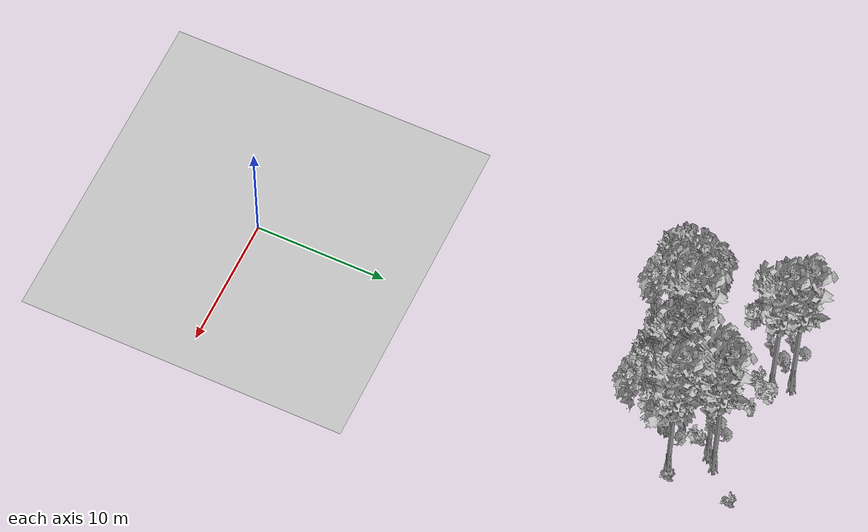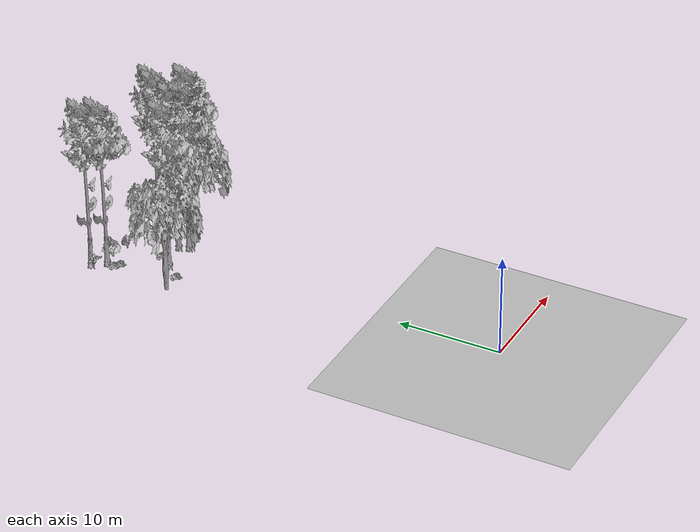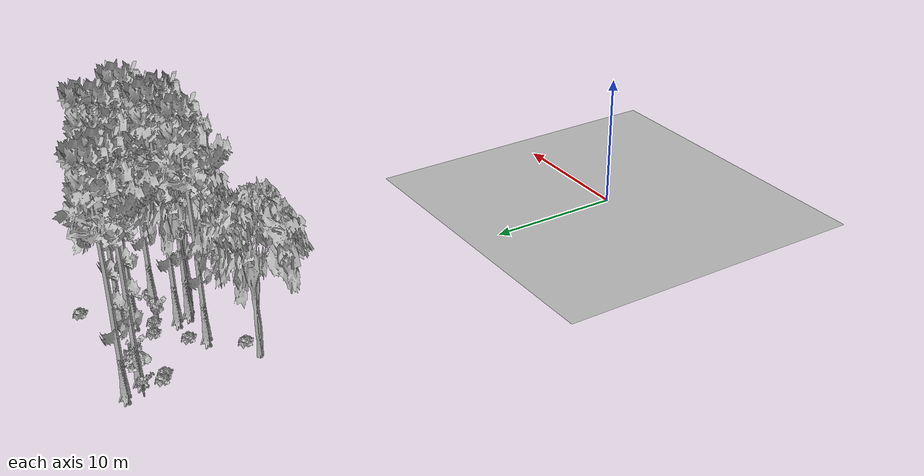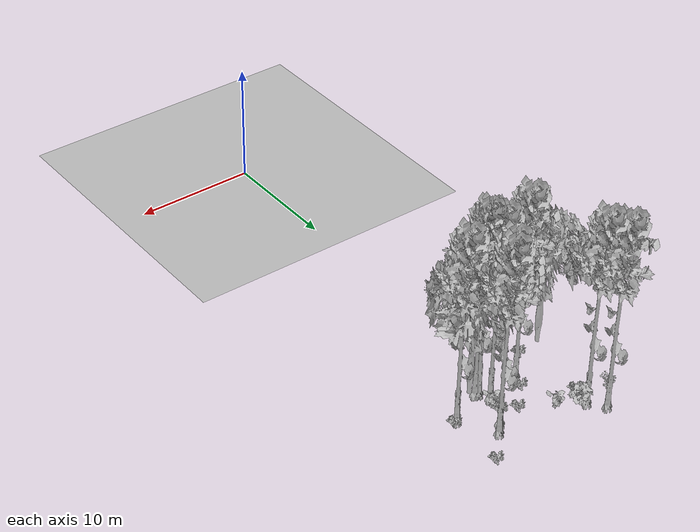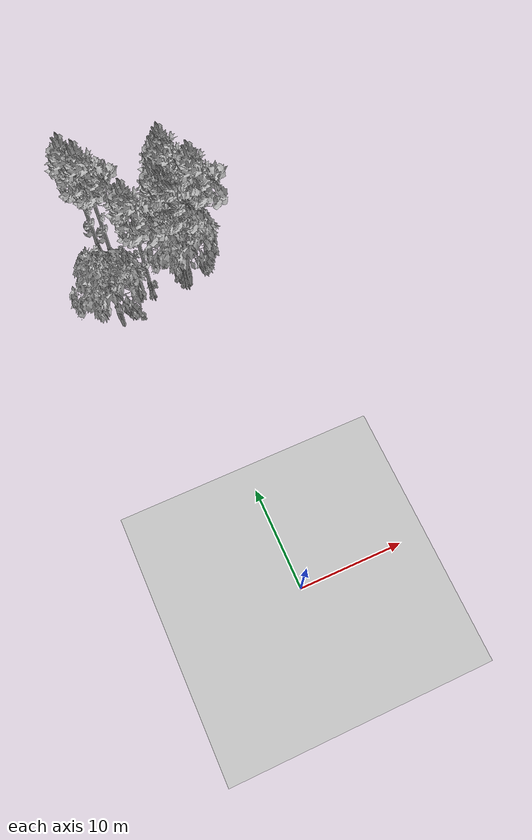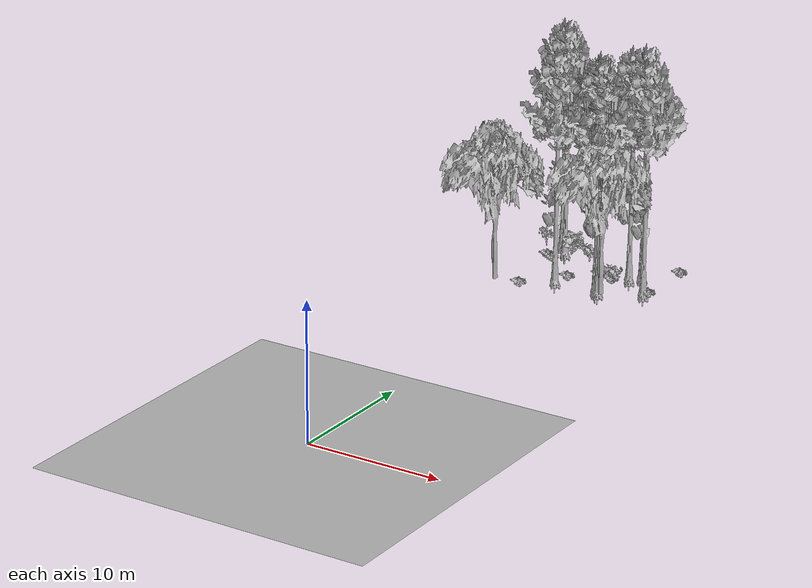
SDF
<sdf version="1.7">
 <world name="default">
  <model name="ground_plane">
   <static>1</static>
   <link name="link">
    <collision name="collision">
     <pose>-50 0 0 0 -0 0</pose>
     <geometry><plane><normal>0 0 1</normal><size>80 80</size></plane></geometry>
     <surface><contact><ode><min_depth>0.01</min_depth><max_vel>0</max_vel></ode></contact></surface>
    </collision>
    <visual name="grass">
     <cast_shadows>0</cast_shadows>
     <geometry>
      <mesh>
       <scale>0.46714285714285714 0.46714285714285714 0.1</scale>
       <uri>file://grass_plane/meshes/grass_plane.dae</uri>
      </mesh>
     </geometry>
    </visual>
   </link>
  </model>
  <model name="Tree 67">
   <static>1</static>
   <pose>1.953601201825471 34.15780483885254 0 1.57079 -0 0</pose>
   <link name="link">
    <collision name="collision">
     <geometry><mesh><scale>3.5 5 3.5</scale><uri>model://tree_9/meshes/tree_9.obj</uri></mesh></geometry>
    </collision>
    <visual name="visual">
     <geometry><mesh><scale>3.5 5 3.5</scale><uri>model://tree_9/meshes/tree_9.obj</uri></mesh></geometry>
    </visual>
   </link>
  </model>
  <model name="Tree 171">
   <static>1</static>
   <pose>3.167470859483295 36.67236679649187 0 1.57079 -0 0</pose>
   <link name="link">
    <collision name="collision">
     <geometry><mesh><scale>3.5 5 3.5</scale><uri>model://tree_9/meshes/tree_9.obj</uri></mesh></geometry>
    </collision>
    <visual name="visual">
     <geometry><mesh><scale>3.5 5 3.5</scale><uri>model://tree_9/meshes/tree_9.obj</uri></mesh></geometry>
    </visual>
   </link>
  </model>
  <model name="Tree 193">
   <static>1</static>
   <pose>2.5421337804139057 33.13782268100232 0 1.57079 -0 0</pose>
   <link name="link">
    <collision name="collision">
     <geometry><mesh><scale>3.5 5 3.5</scale><uri>model://tree_9/meshes/tree_9.obj</uri></mesh></geometry>
    </collision>
    <visual name="visual">
     <geometry><mesh><scale>3.5 5 3.5</scale><uri>model://tree_9/meshes/tree_9.obj</uri></mesh></geometry>
    </visual>
   </link>
  </model>
  <model name="Tree 271">
   <static>1</static>
   <pose>3.843879411268638 37.38095172360083 0 1.57079 -0 0</pose>
   <link name="link">
    <collision name="collision">
     <geometry><mesh><scale>3.5 5 3.5</scale><uri>model://tree_9/meshes/tree_9.obj</uri></mesh></geometry>
    </collision>
    <visual name="visual">
     <geometry><mesh><scale>3.5 5 3.5</scale><uri>model://tree_9/meshes/tree_9.obj</uri></mesh></geometry>
    </visual>
   </link>
  </model>
  <model name="Tree 311">
   <static>1</static>
   <pose>-4.325906306196686 39.85862625287295 0 1.57079 -0 0</pose>
   <link name="link">
    <collision name="collision">
     <geometry><mesh><scale>3.5 5 3.5</scale><uri>model://tree_9/meshes/tree_9.obj</uri></mesh></geometry>
    </collision>
    <visual name="visual">
     <geometry><mesh><scale>3.5 5 3.5</scale><uri>model://tree_9/meshes/tree_9.obj</uri></mesh></geometry>
    </visual>
   </link>
  </model>
  <model name="Tree 362">
   <static>1</static>
   <pose>2.8208354791064636 32.89792725625611 0 1.57079 -0 0</pose>
   <link name="link">
    <collision name="collision">
     <geometry><mesh><scale>3.5 5 3.5</scale><uri>model://tree_2/meshes/tree_2.obj</uri></mesh></geometry>
    </collision>
    <visual name="visual">
     <geometry><mesh><scale>3.5 5 3.5</scale><uri>model://tree_2/meshes/tree_2.obj</uri></mesh></geometry>
    </visual>
   </link>
  </model>
  <model name="Tree 409">
   <static>1</static>
   <pose>-5.136334178574316 31.321088175438263 0 1.57079 -0 0</pose>
   <link name="link">
    <collision name="collision">
     <geometry><mesh><scale>3.5 5 3.5</scale><uri>model://tree_2/meshes/tree_2.obj</uri></mesh></geometry>
    </collision>
    <visual name="visual">
     <geometry><mesh><scale>3.5 5 3.5</scale><uri>model://tree_2/meshes/tree_2.obj</uri></mesh></geometry>
    </visual>
   </link>
  </model>
  <model name="Tree 424">
   <static>1</static>
   <pose>5.466930071926676 34.60804702306956 0 1.57079 -0 0</pose>
   <link name="link">
    <collision name="collision">
     <geometry><mesh><scale>3.5 5 3.5</scale><uri>model://tree_9/meshes/tree_9.obj</uri></mesh></geometry>
    </collision>
    <visual name="visual">
     <geometry><mesh><scale>3.5 5 3.5</scale><uri>model://tree_9/meshes/tree_9.obj</uri></mesh></geometry>
    </visual>
   </link>
  </model>
  <model name="Tree 461">
   <static>1</static>
   <pose>-1.1492517602160675 33.359229274838526 0 1.57079 -0 0</pose>
   <link name="link">
    <collision name="collision">
     <geometry><mesh><scale>3.5 5 3.5</scale><uri>model://tree_9/meshes/tree_9.obj</uri></mesh></geometry>
    </collision>
    <visual name="visual">
     <geometry><mesh><scale>3.5 5 3.5</scale><uri>model://tree_9/meshes/tree_9.obj</uri></mesh></geometry>
    </visual>
   </link>
  </model>
  <model name="Tree 469">
   <static>1</static>
   <pose>-3.4103152258569125 38.671943383223606 0 1.57079 -0 0</pose>
   <link name="link">
    <collision name="collision">
     <geometry><mesh><scale>3.5 5 3.5</scale><uri>model://tree_9/meshes/tree_9.obj</uri></mesh></geometry>
    </collision>
    <visual name="visual">
     <geometry><mesh><scale>3.5 5 3.5</scale><uri>model://tree_9/meshes/tree_9.obj</uri></mesh></geometry>
    </visual>
   </link>
  </model>
  <model name="Tree 500">
   <static>1</static>
   <pose>2.2994445297178743 33.25248018291592 0 1.57079 -0 0</pose>
   <link name="link">
    <collision name="collision">
     <geometry><mesh><scale>3.5 5 3.5</scale><uri>model://tree_9/meshes/tree_9.obj</uri></mesh></geometry>
    </collision>
    <visual name="visual">
     <geometry><mesh><scale>3.5 5 3.5</scale><uri>model://tree_9/meshes/tree_9.obj</uri></mesh></geometry>
    </visual>
   </link>
  </model>
  <model name="Bush 87">
   <static>1</static>
   <pose>-5.171880319087798 39.004066634397844 0 1.57079 -0 0</pose>
   <link name="link">
    <collision name="collision">
     <geometry><mesh><scale>2 2 2</scale><uri>model://bush_5/meshes/bush_5.obj</uri></mesh></geometry>
     <surface><contact><collide_without_contact>false</collide_without_contact></contact></surface>
    </collision>
    <visual name="visual">
     <geometry><mesh><scale>2 2 2</scale><uri>model://bush_5/meshes/bush_5.obj</uri></mesh></geometry>
    </visual>
   </link>
  </model>
  <model name="Bush 132">
   <static>1</static>
   <pose>5.832929078219642 39.41352126537295 0 1.57079 -0 0</pose>
   <link name="link">
    <collision name="collision">
     <geometry><mesh><scale>2 2 2</scale><uri>model://bush_2/meshes/bush_2.obj</uri></mesh></geometry>
     <surface><contact><collide_without_contact>false</collide_without_contact></contact></surface>
    </collision>
    <visual name="visual">
     <geometry><mesh><scale>2 2 2</scale><uri>model://bush_2/meshes/bush_2.obj</uri></mesh></geometry>
    </visual>
   </link>
  </model>
  <model name="Bush 154">
   <static>1</static>
   <pose>2.7310749565641146 35.2284893293957 0 1.57079 -0 0</pose>
   <link name="link">
    <collision name="collision">
     <geometry><mesh><scale>2 2 2</scale><uri>model://bush_0/meshes/bush_0.obj</uri></mesh></geometry>
     <surface><contact><collide_without_contact>false</collide_without_contact></contact></surface>
    </collision>
    <visual name="visual">
     <geometry><mesh><scale>2 2 2</scale><uri>model://bush_0/meshes/bush_0.obj</uri></mesh></geometry>
    </visual>
   </link>
  </model>
  <model name="Bush 166">
   <static>1</static>
   <pose>-4.236401893964569 37.41534687440519 0 1.57079 -0 0</pose>
   <link name="link">
    <collision name="collision">
     <geometry><mesh><scale>2 2 2</scale><uri>model://bush_2/meshes/bush_2.obj</uri></mesh></geometry>
     <surface><contact><collide_without_contact>false</collide_without_contact></contact></surface>
    </collision>
    <visual name="visual">
     <geometry><mesh><scale>2 2 2</scale><uri>model://bush_2/meshes/bush_2.obj</uri></mesh></geometry>
    </visual>
   </link>
  </model>
  <model name="Bush 183">
   <static>1</static>
   <pose>-3.708017997300537 37.0875923695679 0 1.57079 -0 0</pose>
   <link name="link">
    <collision name="collision">
     <geometry><mesh><scale>2 2 2</scale><uri>model://bush_2/meshes/bush_2.obj</uri></mesh></geometry>
     <surface><contact><collide_without_contact>false</collide_without_contact></contact></surface>
    </collision>
    <visual name="visual">
     <geometry><mesh><scale>2 2 2</scale><uri>model://bush_2/meshes/bush_2.obj</uri></mesh></geometry>
    </visual>
   </link>
  </model>
  <model name="Bush 231">
   <static>1</static>
   <pose>2.207581766646719 35.64053043733193 0 1.57079 -0 0</pose>
   <link name="link">
    <collision name="collision">
     <geometry><mesh><scale>2 2 2</scale><uri>model://bush_2/meshes/bush_2.obj</uri></mesh></geometry>
     <surface><contact><collide_without_contact>false</collide_without_contact></contact></surface>
    </collision>
    <visual name="visual">
     <geometry><mesh><scale>2 2 2</scale><uri>model://bush_2/meshes/bush_2.obj</uri></mesh></geometry>
    </visual>
   </link>
  </model>
  <model name="Bush 242">
   <static>1</static>
   <pose>0.9832890113342856 36.11921697712971 0 1.57079 -0 0</pose>
   <link name="link">
    <collision name="collision">
     <geometry><mesh><scale>2 2 2</scale><uri>model://bush_2/meshes/bush_2.obj</uri></mesh></geometry>
     <surface><contact><collide_without_contact>false</collide_without_contact></contact></surface>
    </collision>
    <visual name="visual">
     <geometry><mesh><scale>2 2 2</scale><uri>model://bush_2/meshes/bush_2.obj</uri></mesh></geometry>
    </visual>
   </link>
  </model>
  <model name="Bush 266">
   <static>1</static>
   <pose>5.755213885462354 34.72875279564994 0 1.57079 -0 0</pose>
   <link name="link">
    <collision name="collision">
     <geometry><mesh><scale>2 2 2</scale><uri>model://bush_2/meshes/bush_2.obj</uri></mesh></geometry>
     <surface><contact><collide_without_contact>false</collide_without_contact></contact></surface>
    </collision>
    <visual name="visual">
     <geometry><mesh><scale>2 2 2</scale><uri>model://bush_2/meshes/bush_2.obj</uri></mesh></geometry>
    </visual>
   </link>
  </model>
  <model name="Bush 415">
   <static>1</static>
   <pose>-0.7536215253760901 34.387108137557775 0 1.57079 -0 0</pose>
   <link name="link">
    <collision name="collision">
     <geometry><mesh><scale>2 2 2</scale><uri>model://bush_2/meshes/bush_2.obj</uri></mesh></geometry>
     <surface><contact><collide_without_contact>false</collide_without_contact></contact></surface>
    </collision>
    <visual name="visual">
     <geometry><mesh><scale>2 2 2</scale><uri>model://bush_2/meshes/bush_2.obj</uri></mesh></geometry>
    </visual>
   </link>
  </model>
  <model name="Bush 437">
   <static>1</static>
   <pose>-0.9064819757166376 37.99062700549415 0 1.57079 -0 0</pose>
   <link name="link">
    <collision name="collision">
     <geometry><mesh><scale>2 2 2</scale><uri>model://bush_0/meshes/bush_0.obj</uri></mesh></geometry>
     <surface><contact><collide_without_contact>false</collide_without_contact></contact></surface>
    </collision>
    <visual name="visual">
     <geometry><mesh><scale>2 2 2</scale><uri>model://bush_0/meshes/bush_0.obj</uri></mesh></geometry>
    </visual>
   </link>
  </model>
  <model name="Bush 480">
   <static>1</static>
   <pose>-3.121735626578129 31.45939110492351 0 1.57079 -0 0</pose>
   <link name="link">
    <collision name="collision">
     <geometry><mesh><scale>2 2 2</scale><uri>model://bush_2/meshes/bush_2.obj</uri></mesh></geometry>
     <surface><contact><collide_without_contact>false</collide_without_contact></contact></surface>
    </collision>
    <visual name="visual">
     <geometry><mesh><scale>2 2 2</scale><uri>model://bush_2/meshes/bush_2.obj</uri></mesh></geometry>
    </visual>
   </link>
  </model>
  <model name="Bush 488">
   <static>1</static>
   <pose>-2.7262165168881367 38.42389726930112 0 1.57079 -0 0</pose>
   <link name="link">
    <collision name="collision">
     <geometry><mesh><scale>2 2 2</scale><uri>model://bush_1/meshes/bush_1.obj</uri></mesh></geometry>
     <surface><contact><collide_without_contact>false</collide_without_contact></contact></surface>
    </collision>
    <visual name="visual">
     <geometry><mesh><scale>2 2 2</scale><uri>model://bush_1/meshes/bush_1.obj</uri></mesh></geometry>
    </visual>
   </link>
  </model>
 </world>
</sdf>
